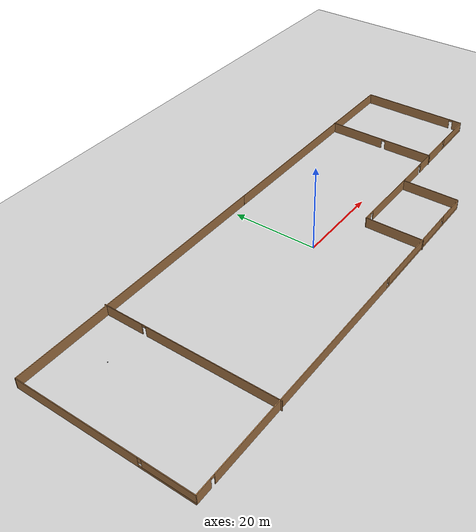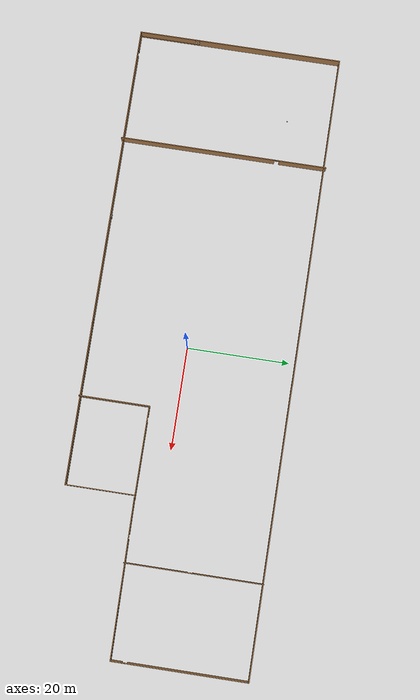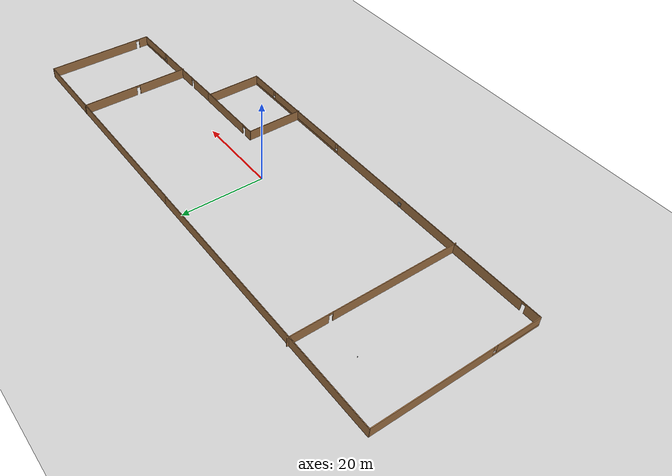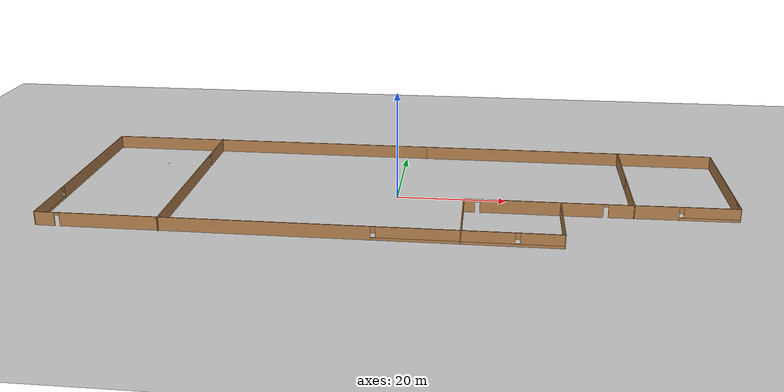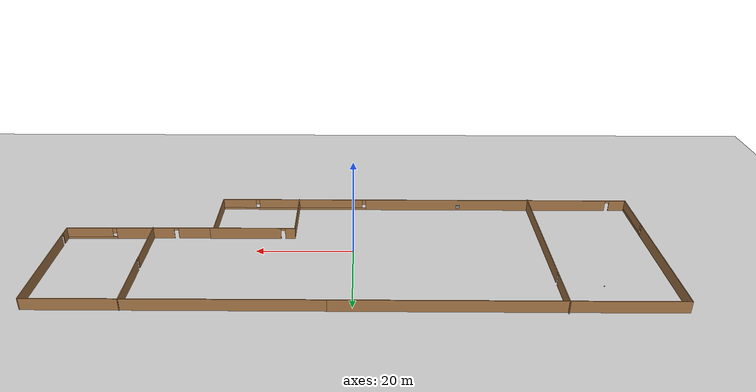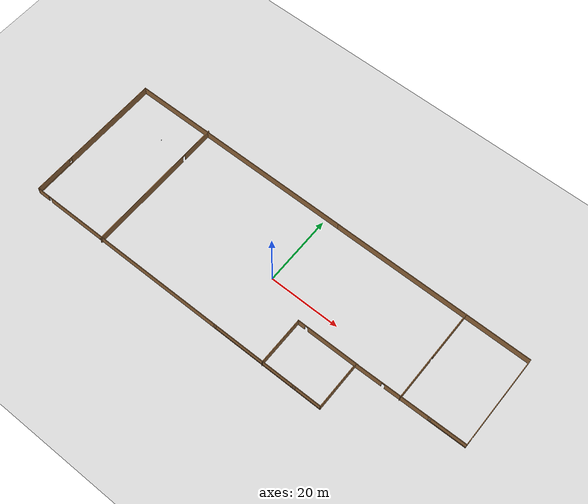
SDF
<sdf version="1.6">
 <world name="default">
  <model name="ground_plane">
   <static>1</static>
   <link name="link">
    <collision name="collision">
     <geometry><plane><normal>0 0 1</normal><size>100 100</size></plane></geometry>
     <surface><friction><ode><mu>100</mu><mu2>50</mu2></ode></friction></surface>
    </collision>
    <visual name="visual">
     <cast_shadows>0</cast_shadows>
     <geometry><plane><normal>0 0 1</normal><size>100 100</size></plane></geometry>
     <material>
      <script><uri>file://media/materials/scripts/gazebo.material</uri><name>Gazebo/Grey</name></script>
     </material>
    </visual>
   </link>
  </model>
  <light name="sun" type="directional">
   <pose>0 0 10 0 -0 0</pose>
   <diffuse>0.8 0.8 0.8 1</diffuse>
   <specular>0.2 0.2 0.2 1</specular>
   <attenuation>
    <range>1000</range>
    <constant>0.9</constant>
    <linear>0.01</linear>
    <quadratic>0.001</quadratic>
   </attenuation>
   <direction>-0.5 0.1 -0.9</direction>
  </light>
  <gravity>0 0 -9.8</gravity>
  <magnetic_field>6e-06 2.3e-05 -4.2e-05</magnetic_field>
  <atmosphere type="adiabatic"/>
  <physics name="default_physics" default="0" type="ode">
   <max_step_size>0.001</max_step_size>
   <real_time_factor>1</real_time_factor>
   <real_time_update_rate>1000</real_time_update_rate>
  </physics>
  <scene><ambient>0.4 0.4 0.4 1</ambient><background>0.7 0.7 0.7 1</background><shadows>1</shadows></scene>
  <spherical_coordinates>
   <surface_model>EARTH_WGS84</surface_model>
   <latitude_deg>0</latitude_deg>
   <longitude_deg>0</longitude_deg>
   <elevation>0</elevation>
   <heading_deg>0</heading_deg>
  </spherical_coordinates>
  <model name="newworld">
   <pose>-0.2355 1.1604 0 0 -0 0</pose>
   <link name="Wall_1">
    <collision name="Wall_1_Collision">
     <geometry><box><size>65.75 0.15 2.5</size></box></geometry>
     <pose>0 0 1.25 0 -0 0</pose>
    </collision>
    <visual name="Wall_1_Visual">
     <pose>0 0 1.25 0 -0 0</pose>
     <geometry><box><size>65.75 0.15 2.5</size></box></geometry>
     <material>
      <script><uri>file://media/materials/scripts/gazebo.material</uri><name>Gazebo/Wood</name></script>
      <ambient>1 1 1 1</ambient>
     </material>
     <meta><layer>0</layer></meta>
    </visual>
    <pose>-27.9742 19.9319 0 0 -0 3.14159</pose>
   </link>
   <link name="Wall_10">
    <collision name="Wall_10_Collision">
     <geometry><box><size>56.75 0.15 2.5</size></box></geometry>
     <pose>0 0 1.25 0 -0 0</pose>
    </collision>
    <visual name="Wall_10_Visual">
     <pose>0 0 1.25 0 -0 0</pose>
     <geometry><box><size>56.75 0.15 2.5</size></box></geometry>
     <material>
      <script><uri>file://media/materials/scripts/gazebo.material</uri><name>Gazebo/Wood</name></script>
      <ambient>1 1 1 1</ambient>
     </material>
     <meta><layer>0</layer></meta>
    </visual>
    <pose>32.4733 19.9086 0 0 -0 0</pose>
   </link>
   <link name="Wall_11">
    <pose>60.7733 6.85863 0 0 0 -1.5708</pose>
    <visual name="Wall_11_Visual_0">
     <pose>-1.6007 0 1.25 0 -0 0</pose>
     <geometry><box><size>23.0486 0.15 2.5</size></box></geometry>
     <material>
      <script><uri>file://media/materials/scripts/gazebo.material</uri><name>Gazebo/Wood</name></script>
      <ambient>1 1 1 1</ambient>
     </material>
     <meta><layer>0</layer></meta>
    </visual>
    <collision name="Wall_11_Collision_0">
     <geometry><box><size>23.0486 0.15 2.5</size></box></geometry>
     <pose>-1.6007 0 1.25 0 -0 0</pose>
    </collision>
    <visual name="Wall_11_Visual_1">
     <pose>11.9743 0 1.25 0 -0 0</pose>
     <geometry><box><size>2.30139 0.15 2.5</size></box></geometry>
     <material>
      <script><uri>file://media/materials/scripts/gazebo.material</uri><name>Gazebo/Wood</name></script>
      <ambient>1 1 1 1</ambient>
     </material>
     <meta><layer>0</layer></meta>
    </visual>
    <collision name="Wall_11_Collision_1">
     <geometry><box><size>2.30139 0.15 2.5</size></box></geometry>
     <pose>11.9743 0 1.25 0 -0 0</pose>
    </collision>
    <visual name="Wall_11_Visual_2">
     <pose>10.3736 0 2.25 0 -0 0</pose>
     <geometry><box><size>0.9 0.15 0.5</size></box></geometry>
     <material>
      <script><uri>file://media/materials/scripts/gazebo.material</uri><name>Gazebo/Wood</name></script>
      <ambient>1 1 1 1</ambient>
     </material>
     <meta><layer>0</layer></meta>
    </visual>
    <collision name="Wall_11_Collision_2">
     <geometry><box><size>0.9 0.15 0.5</size></box></geometry>
     <pose>10.3736 0 2.25 0 -0 0</pose>
    </collision>
   </link>
   <link name="Wall_13">
    <pose>45.2995 -6.37974 0 0 -0 0.012173</pose>
    <visual name="Wall_13_Visual_0">
     <pose>-11.7999 0 1.25 0 -0 0</pose>
     <geometry><box><size>7.49983 0.15 2.5</size></box></geometry>
     <material>
      <script><uri>file://media/materials/scripts/gazebo.material</uri><name>Gazebo/Wood</name></script>
      <ambient>1 1 1 1</ambient>
     </material>
     <meta><layer>0</layer></meta>
    </visual>
    <collision name="Wall_13_Collision_0">
     <geometry><box><size>7.49983 0.15 2.5</size></box></geometry>
     <pose>-11.7999 0 1.25 0 -0 0</pose>
    </collision>
    <visual name="Wall_13_Visual_1">
     <pose>-1.06438 0 1.25 0 -0 0</pose>
     <geometry><box><size>12.1713 0.15 2.5</size></box></geometry>
     <material>
      <script><uri>file://media/materials/scripts/gazebo.material</uri><name>Gazebo/Wood</name></script>
      <ambient>1 1 1 1</ambient>
     </material>
     <meta><layer>0</layer></meta>
    </visual>
    <collision name="Wall_13_Collision_1">
     <geometry><box><size>12.1713 0.15 2.5</size></box></geometry>
     <pose>-1.06438 0 1.25 0 -0 0</pose>
    </collision>
    <visual name="Wall_13_Visual_2">
     <pose>10.2856 0 0.25 0 -0 0</pose>
     <geometry><box><size>10.5286 0.15 0.5</size></box></geometry>
     <material>
      <script><uri>file://media/materials/scripts/gazebo.material</uri><name>Gazebo/Wood</name></script>
      <ambient>1 1 1 1</ambient>
     </material>
     <meta><layer>0</layer></meta>
    </visual>
    <collision name="Wall_13_Collision_2">
     <geometry><box><size>10.5286 0.15 0.5</size></box></geometry>
     <pose>10.2856 0 0.25 0 -0 0</pose>
    </collision>
    <visual name="Wall_13_Visual_3">
     <pose>10.6856 0 1.5 0 -0 0</pose>
     <geometry><box><size>9.72858 0.15 2</size></box></geometry>
     <material>
      <script><uri>file://media/materials/scripts/gazebo.material</uri><name>Gazebo/Wood</name></script>
      <ambient>1 1 1 1</ambient>
     </material>
     <meta><layer>0</layer></meta>
    </visual>
    <collision name="Wall_13_Collision_3">
     <geometry><box><size>9.72858 0.15 2</size></box></geometry>
     <pose>10.6856 0 1.5 0 -0 0</pose>
    </collision>
    <visual name="Wall_13_Visual_4">
     <pose>5.42127 0 1.9 0 -0 0</pose>
     <geometry><box><size>0.8 0.15 1.2</size></box></geometry>
     <material>
      <script><uri>file://media/materials/scripts/gazebo.material</uri><name>Gazebo/Wood</name></script>
      <ambient>1 1 1 1</ambient>
     </material>
     <meta><layer>0</layer></meta>
    </visual>
    <collision name="Wall_13_Collision_4">
     <geometry><box><size>0.8 0.15 1.2</size></box></geometry>
     <pose>5.42127 0 1.9 0 -0 0</pose>
    </collision>
    <visual name="Wall_13_Visual_5">
     <pose>-7.60002 0 2.25 0 -0 0</pose>
     <geometry><box><size>0.9 0.15 0.5</size></box></geometry>
     <material>
      <script><uri>file://media/materials/scripts/gazebo.material</uri><name>Gazebo/Wood</name></script>
      <ambient>1 1 1 1</ambient>
     </material>
     <meta><layer>0</layer></meta>
    </visual>
    <collision name="Wall_13_Collision_5">
     <geometry><box><size>0.9 0.15 0.5</size></box></geometry>
     <pose>-7.60002 0 2.25 0 -0 0</pose>
    </collision>
   </link>
   <link name="Wall_15">
    <pose>21.617 -6.513 0 0 -0 3.14159</pose>
    <visual name="Wall_15_Visual_0">
     <pose>-1.49387 0 1.25 0 -0 0</pose>
     <geometry><box><size>15.0123 0.15 2.5</size></box></geometry>
     <material>
      <script><uri>file://media/materials/scripts/gazebo.material</uri><name>Gazebo/Wood</name></script>
      <ambient>1 1 1 1</ambient>
     </material>
     <meta><layer>0</layer></meta>
    </visual>
    <collision name="Wall_15_Collision_0">
     <geometry><box><size>15.0123 0.15 2.5</size></box></geometry>
     <pose>-1.49387 0 1.25 0 -0 0</pose>
    </collision>
    <visual name="Wall_15_Visual_1">
     <pose>7.95613 0 1.25 0 -0 0</pose>
     <geometry><box><size>2.08774 0.15 2.5</size></box></geometry>
     <material>
      <script><uri>file://media/materials/scripts/gazebo.material</uri><name>Gazebo/Wood</name></script>
      <ambient>1 1 1 1</ambient>
     </material>
     <meta><layer>0</layer></meta>
    </visual>
    <collision name="Wall_15_Collision_1">
     <geometry><box><size>2.08774 0.15 2.5</size></box></geometry>
     <pose>7.95613 0 1.25 0 -0 0</pose>
    </collision>
    <visual name="Wall_15_Visual_2">
     <pose>6.46226 0 2.25 0 -0 0</pose>
     <geometry><box><size>0.9 0.15 0.5</size></box></geometry>
     <material>
      <script><uri>file://media/materials/scripts/gazebo.material</uri><name>Gazebo/Wood</name></script>
      <ambient>1 1 1 1</ambient>
     </material>
     <meta><layer>0</layer></meta>
    </visual>
    <collision name="Wall_15_Collision_2">
     <geometry><box><size>0.9 0.15 0.5</size></box></geometry>
     <pose>6.46226 0 2.25 0 -0 0</pose>
    </collision>
   </link>
   <link name="Wall_16">
    <collision name="Wall_16_Collision">
     <geometry><box><size>13.75 0.15 2.5</size></box></geometry>
     <pose>0 0 1.25 0 -0 0</pose>
    </collision>
    <visual name="Wall_16_Visual">
     <pose>0 0 1.25 0 -0 0</pose>
     <geometry><box><size>13.75 0.15 2.5</size></box></geometry>
     <material>
      <script><uri>file://media/materials/scripts/gazebo.material</uri><name>Gazebo/Wood</name></script>
      <ambient>1 1 1 1</ambient>
     </material>
     <meta><layer>0</layer></meta>
    </visual>
    <pose>12.692 -13.313 0 0 0 -1.5708</pose>
   </link>
   <link name="Wall_18">
    <pose>-38.8313 0 0 0 0 -1.5708</pose>
    <visual name="Wall_18_Visual_0">
     <pose>-15.6908 0 1.25 0 -0 0</pose>
     <geometry><box><size>9.36847 0.15 2.5</size></box></geometry>
     <material>
      <script><uri>file://media/materials/scripts/gazebo.material</uri><name>Gazebo/Wood</name></script>
      <ambient>1 1 1 1</ambient>
     </material>
     <meta><layer>0</layer></meta>
    </visual>
    <collision name="Wall_18_Collision_0">
     <geometry><box><size>9.36847 0.15 2.5</size></box></geometry>
     <pose>-15.6908 0 1.25 0 -0 0</pose>
    </collision>
    <visual name="Wall_18_Visual_1">
     <pose>5.13424 0 1.25 0 -0 0</pose>
     <geometry><box><size>30.4815 0.15 2.5</size></box></geometry>
     <material>
      <script><uri>file://media/materials/scripts/gazebo.material</uri><name>Gazebo/Wood</name></script>
      <ambient>1 1 1 1</ambient>
     </material>
     <meta><layer>0</layer></meta>
    </visual>
    <collision name="Wall_18_Collision_1">
     <geometry><box><size>30.4815 0.15 2.5</size></box></geometry>
     <pose>5.13424 0 1.25 0 -0 0</pose>
    </collision>
    <visual name="Wall_18_Visual_2">
     <pose>-10.5565 0 2.25 0 -0 0</pose>
     <geometry><box><size>0.9 0.15 0.5</size></box></geometry>
     <material>
      <script><uri>file://media/materials/scripts/gazebo.material</uri><name>Gazebo/Wood</name></script>
      <ambient>1 1 1 1</ambient>
     </material>
     <meta><layer>0</layer></meta>
    </visual>
    <collision name="Wall_18_Collision_2">
     <geometry><box><size>0.9 0.15 0.5</size></box></geometry>
     <pose>-10.5565 0 2.25 0 -0 0</pose>
    </collision>
   </link>
   <link name="Wall_2">
    <pose>-60.7742 0.006892 0 0 0 -1.5708</pose>
    <visual name="Wall_2_Visual_0">
     <pose>-5.91174 0 1.25 0 -0 0</pose>
     <geometry><box><size>28.1765 0.15 2.5</size></box></geometry>
     <material>
      <script><uri>file://media/materials/scripts/gazebo.material</uri><name>Gazebo/Wood</name></script>
      <ambient>1 1 1 1</ambient>
     </material>
     <meta><layer>0</layer></meta>
    </visual>
    <collision name="Wall_2_Collision_0">
     <geometry><box><size>28.1765 0.15 2.5</size></box></geometry>
     <pose>-5.91174 0 1.25 0 -0 0</pose>
    </collision>
    <visual name="Wall_2_Visual_1">
     <pose>14.0883 0 0.25 0 -0 0</pose>
     <geometry><box><size>11.8235 0.15 0.5</size></box></geometry>
     <material>
      <script><uri>file://media/materials/scripts/gazebo.material</uri><name>Gazebo/Wood</name></script>
      <ambient>1 1 1 1</ambient>
     </material>
     <meta><layer>0</layer></meta>
    </visual>
    <collision name="Wall_2_Collision_1">
     <geometry><box><size>11.8235 0.15 0.5</size></box></geometry>
     <pose>14.0883 0 0.25 0 -0 0</pose>
    </collision>
    <visual name="Wall_2_Visual_2">
     <pose>14.4883 0 1.5 0 -0 0</pose>
     <geometry><box><size>11.0235 0.15 2</size></box></geometry>
     <material>
      <script><uri>file://media/materials/scripts/gazebo.material</uri><name>Gazebo/Wood</name></script>
      <ambient>1 1 1 1</ambient>
     </material>
     <meta><layer>0</layer></meta>
    </visual>
    <collision name="Wall_2_Collision_2">
     <geometry><box><size>11.0235 0.15 2</size></box></geometry>
     <pose>14.4883 0 1.5 0 -0 0</pose>
    </collision>
    <visual name="Wall_2_Visual_3">
     <pose>8.57652 0 1.9 0 -0 0</pose>
     <geometry><box><size>0.8 0.15 1.2</size></box></geometry>
     <material>
      <script><uri>file://media/materials/scripts/gazebo.material</uri><name>Gazebo/Wood</name></script>
      <ambient>1 1 1 1</ambient>
     </material>
     <meta><layer>0</layer></meta>
    </visual>
    <collision name="Wall_2_Collision_3">
     <geometry><box><size>0.8 0.15 1.2</size></box></geometry>
     <pose>8.57652 0 1.9 0 -0 0</pose>
    </collision>
   </link>
   <link name="Wall_20">
    <pose>42.5945 6.72053 0 0 0 -1.5708</pose>
    <visual name="Wall_20_Visual_0">
     <pose>-6.54005 0 1.25 0 -0 0</pose>
     <geometry><box><size>13.6699 0.15 2.5</size></box></geometry>
     <material>
      <script><uri>file://media/materials/scripts/gazebo.material</uri><name>Gazebo/Wood</name></script>
      <ambient>1 1 1 1</ambient>
     </material>
     <meta><layer>0</layer></meta>
    </visual>
    <collision name="Wall_20_Collision_0">
     <geometry><box><size>13.6699 0.15 2.5</size></box></geometry>
     <pose>-6.54005 0 1.25 0 -0 0</pose>
    </collision>
    <visual name="Wall_20_Visual_1">
     <pose>7.28495 0 1.25 0 -0 0</pose>
     <geometry><box><size>12.1801 0.15 2.5</size></box></geometry>
     <material>
      <script><uri>file://media/materials/scripts/gazebo.material</uri><name>Gazebo/Wood</name></script>
      <ambient>1 1 1 1</ambient>
     </material>
     <meta><layer>0</layer></meta>
    </visual>
    <collision name="Wall_20_Collision_1">
     <geometry><box><size>12.1801 0.15 2.5</size></box></geometry>
     <pose>7.28495 0 1.25 0 -0 0</pose>
    </collision>
    <visual name="Wall_20_Visual_2">
     <pose>0.744905 0 2.25 0 -0 0</pose>
     <geometry><box><size>0.9 0.15 0.5</size></box></geometry>
     <material>
      <script><uri>file://media/materials/scripts/gazebo.material</uri><name>Gazebo/Wood</name></script>
      <ambient>1 1 1 1</ambient>
     </material>
     <meta><layer>0</layer></meta>
    </visual>
    <collision name="Wall_20_Collision_2">
     <geometry><box><size>0.9 0.15 0.5</size></box></geometry>
     <pose>0.744905 0 2.25 0 -0 0</pose>
    </collision>
   </link>
   <link name="Wall_3">
    <pose>-15.4742 -19.9181 0 0 -0 0</pose>
    <visual name="Wall_3_Visual_0">
     <pose>-43.5721 0 1.25 0 -0 0</pose>
     <geometry><box><size>3.60573 0.15 2.5</size></box></geometry>
     <material>
      <script><uri>file://media/materials/scripts/gazebo.material</uri><name>Gazebo/Wood</name></script>
      <ambient>1 1 1 1</ambient>
     </material>
     <meta><layer>0</layer></meta>
    </visual>
    <collision name="Wall_3_Collision_0">
     <geometry><box><size>3.60573 0.15 2.5</size></box></geometry>
     <pose>-43.5721 0 1.25 0 -0 0</pose>
    </collision>
    <visual name="Wall_3_Visual_1">
     <pose>-13.8552 0 1.25 0 -0 0</pose>
     <geometry><box><size>54.0281 0.15 2.5</size></box></geometry>
     <material>
      <script><uri>file://media/materials/scripts/gazebo.material</uri><name>Gazebo/Wood</name></script>
      <ambient>1 1 1 1</ambient>
     </material>
     <meta><layer>0</layer></meta>
    </visual>
    <collision name="Wall_3_Collision_1">
     <geometry><box><size>54.0281 0.15 2.5</size></box></geometry>
     <pose>-13.8552 0 1.25 0 -0 0</pose>
    </collision>
    <visual name="Wall_3_Visual_2">
     <pose>29.2669 0 0.25 0 -0 0</pose>
     <geometry><box><size>32.2161 0.15 0.5</size></box></geometry>
     <material>
      <script><uri>file://media/materials/scripts/gazebo.material</uri><name>Gazebo/Wood</name></script>
      <ambient>1 1 1 1</ambient>
     </material>
     <meta><layer>0</layer></meta>
    </visual>
    <collision name="Wall_3_Collision_2">
     <geometry><box><size>32.2161 0.15 0.5</size></box></geometry>
     <pose>29.2669 0 0.25 0 -0 0</pose>
    </collision>
    <visual name="Wall_3_Visual_3">
     <pose>25.5649 0 1.5 0 -0 0</pose>
     <geometry><box><size>23.212 0.15 2</size></box></geometry>
     <material>
      <script><uri>file://media/materials/scripts/gazebo.material</uri><name>Gazebo/Wood</name></script>
      <ambient>1 1 1 1</ambient>
     </material>
     <meta><layer>0</layer></meta>
    </visual>
    <collision name="Wall_3_Collision_3">
     <geometry><box><size>23.212 0.15 2</size></box></geometry>
     <pose>25.5649 0 1.5 0 -0 0</pose>
    </collision>
    <visual name="Wall_3_Visual_4">
     <pose>41.6729 0 1.5 0 -0 0</pose>
     <geometry><box><size>7.40412 0.15 2</size></box></geometry>
     <material>
      <script><uri>file://media/materials/scripts/gazebo.material</uri><name>Gazebo/Wood</name></script>
      <ambient>1 1 1 1</ambient>
     </material>
     <meta><layer>0</layer></meta>
    </visual>
    <collision name="Wall_3_Collision_4">
     <geometry><box><size>7.40412 0.15 2</size></box></geometry>
     <pose>41.6729 0 1.5 0 -0 0</pose>
    </collision>
    <visual name="Wall_3_Visual_5">
     <pose>13.5589 0 1.9 0 -0 0</pose>
     <geometry><box><size>0.8 0.15 1.2</size></box></geometry>
     <material>
      <script><uri>file://media/materials/scripts/gazebo.material</uri><name>Gazebo/Wood</name></script>
      <ambient>1 1 1 1</ambient>
     </material>
     <meta><layer>0</layer></meta>
    </visual>
    <collision name="Wall_3_Collision_5">
     <geometry><box><size>0.8 0.15 1.2</size></box></geometry>
     <pose>13.5589 0 1.9 0 -0 0</pose>
    </collision>
    <visual name="Wall_3_Visual_6">
     <pose>37.5709 0 1.9 0 -0 0</pose>
     <geometry><box><size>0.8 0.15 1.2</size></box></geometry>
     <material>
      <script><uri>file://media/materials/scripts/gazebo.material</uri><name>Gazebo/Wood</name></script>
      <ambient>1 1 1 1</ambient>
     </material>
     <meta><layer>0</layer></meta>
    </visual>
    <collision name="Wall_3_Collision_6">
     <geometry><box><size>0.8 0.15 1.2</size></box></geometry>
     <pose>37.5709 0 1.9 0 -0 0</pose>
    </collision>
    <visual name="Wall_3_Visual_7">
     <pose>-41.3193 0 2.25 0 -0 0</pose>
     <geometry><box><size>0.9 0.15 0.5</size></box></geometry>
     <material>
      <script><uri>file://media/materials/scripts/gazebo.material</uri><name>Gazebo/Wood</name></script>
      <ambient>1 1 1 1</ambient>
     </material>
     <meta><layer>0</layer></meta>
    </visual>
    <collision name="Wall_3_Collision_7">
     <geometry><box><size>0.9 0.15 0.5</size></box></geometry>
     <pose>-41.3193 0 2.25 0 -0 0</pose>
    </collision>
   </link>
   <link name="Wall_4">
    <collision name="Wall_4_Collision">
     <geometry><box><size>13.5 0.15 2.5</size></box></geometry>
     <pose>0 0 1.25 0 -0 0</pose>
    </collision>
    <visual name="Wall_4_Visual">
     <pose>0 0 1.25 0 -0 0</pose>
     <geometry><box><size>13.5 0.15 2.5</size></box></geometry>
     <material>
      <script><uri>file://media/materials/scripts/gazebo.material</uri><name>Gazebo/Wood</name></script>
      <ambient>1 1 1 1</ambient>
     </material>
     <meta><layer>0</layer></meta>
    </visual>
    <pose>29.8258 -13.2431 0 0 -0 1.5708</pose>
   </link>
   <link name="Window_2">
    <collision name="Window_2_Collision">
     <geometry><box><size>0.8 0.17 0.8</size></box></geometry>
     <pose>0 0 0.4 0 -0 0</pose>
    </collision>
    <visual name="Window_2_Visual">
     <pose>0 0 0.4 0 -0 0</pose>
     <geometry><box><size>0.8 0.17 0.8</size></box></geometry>
     <material>
      <script><uri>file://media/materials/scripts/gazebo.material</uri><name>Gazebo/Grey</name></script>
     </material>
    </visual>
    <pose>-23.1609 -19.7915 0.5 0 -0 0</pose>
   </link>
   <static>1</static>
  </model>
  <model name="my_ball">
   <link name="link_0">
    <inertial>
     <mass>1</mass>
     <inertia><ixx>0.1</ixx><ixy>0</ixy><ixz>0</ixz><iyy>0.1</iyy><iyz>0</iyz><izz>0.1</izz></inertia>
    </inertial>
    <visual name="visual">
     <geometry><sphere><radius>0.1</radius></sphere></geometry>
     <material>
      <lighting>1</lighting>
      <script><uri>file://media/materials/scripts/gazebo.material</uri><name>Gazebo/Grey</name></script>
      <shader type="pixel"><normal_map>__default__</normal_map></shader>
      <ambient>1 1 1 1</ambient>
      <diffuse>1 1 1 1</diffuse>
      <specular>1 1 1 1</specular>
      <emissive>1 1 1 1</emissive>
     </material>
    </visual>
    <collision name="collision">
     <geometry><sphere><radius>0.1</radius></sphere></geometry>
     <surface>
      <friction>
       <ode><mu>1</mu><mu2>1</mu2><fdir1>0 0 0</fdir1><slip1>0</slip1><slip2>0</slip2></ode>
       <torsional>
        <coefficient>1</coefficient>
        <patch_radius>0</patch_radius>
        <surface_radius>0</surface_radius>
        <use_patch_radius>1</use_patch_radius>
        <ode><slip>0</slip></ode>
       </torsional>
      </friction>
      <bounce><restitution_coefficient>0</restitution_coefficient><threshold>1e+06</threshold></bounce>
      <contact>
       <collide_without_contact>0</collide_without_contact>
       <collide_without_contact_bitmask>1</collide_without_contact_bitmask>
       <collide_bitmask>1</collide_bitmask>
       <ode>
        <soft_cfm>0</soft_cfm>
        <soft_erp>0.2</soft_erp>
        <kp>1e+13</kp>
        <kd>1</kd>
        <max_vel>0.01</max_vel>
        <min_depth>0</min_depth>
       </ode>
       <bullet>
        <split_impulse>1</split_impulse>
        <split_impulse_penetration_threshold>-0.01</split_impulse_penetration_threshold>
        <soft_cfm>0</soft_cfm>
        <soft_erp>0.2</soft_erp>
        <kp>1e+13</kp>
        <kd>1</kd>
       </bullet>
      </contact>
     </surface>
    </collision>
   </link>
   <static>0</static>
   <pose>-47.9276 12.6018 0.1 0 -0 0</pose>
  </model>
 </world>
</sdf>
